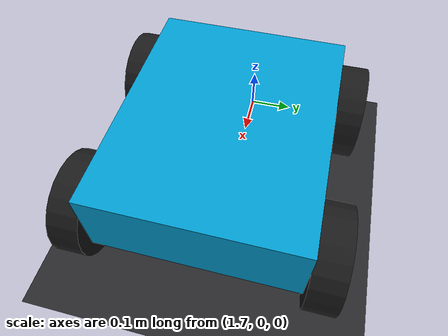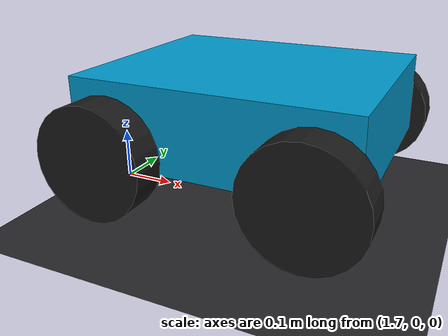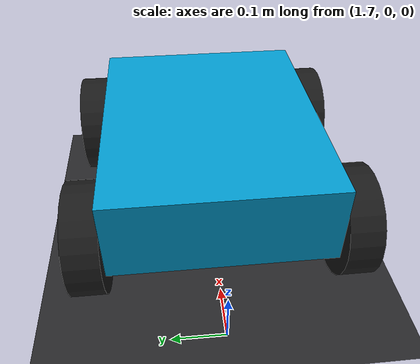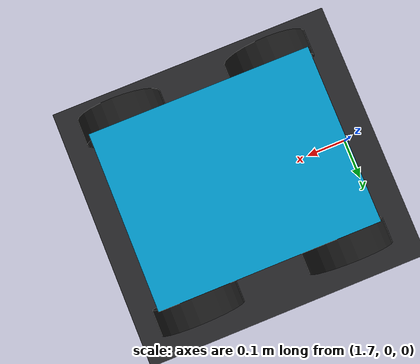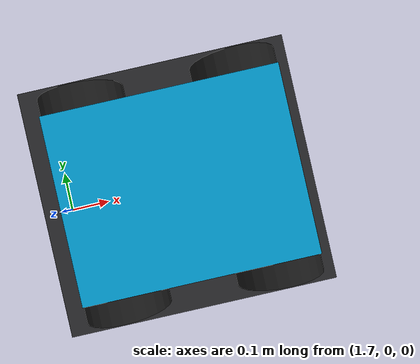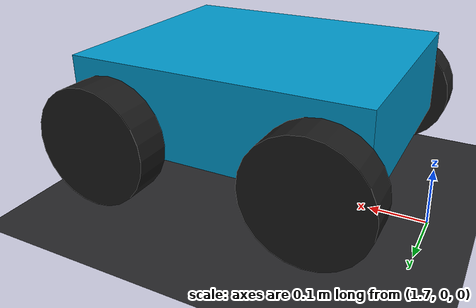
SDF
<?xml version="1.0" ?>
<sdf version="1.6">
  <world name="space_target">
    <physics name="1ms" type="ignored">
      <max_step_size>0.001</max_step_size>
      <real_time_factor>1.0</real_time_factor>
    </physics>
    <plugin filename="gz-sim-physics-system" name="gz::sim::systems::Physics"/>
    <plugin filename="gz-sim-user-commands-system" name="gz::sim::systems::UserCommands"/>
    <plugin filename="gz-sim-scene-broadcaster-system" name="gz::sim::systems::SceneBroadcaster"/>

    <!-- Light Source representing a distant star -->
    <light type="directional" name="sun">
      <cast_shadows>true</cast_shadows>
      <pose>0 0 10 0 0 0</pose>
      <diffuse>0.8 0.8 0.8 1</diffuse>
      <specular>0.2 0.2 0.2 1</specular>
    </light>

    <!-- Ground Plane tinted to look like dark cosmic soil -->
    <model name="ground_plane">
      <static>true</static>
      <link name="link">
        <collision name="collision">
          <geometry><plane><normal>0 0 1</normal><size>100 100</size></plane></geometry>
        </collision>
        <visual name="visual">
          <geometry><plane><normal>0 0 1</normal><size>100 100</size></plane></geometry>
          <material>
            <ambient>0.15 0.15 0.16 1</ambient>
            <diffuse>0.15 0.15 0.16 1</diffuse>
            <specular>0.01 0.01 0.01 1</specular>
          </material>
        </visual>
      </link>
    </model>

    <!-- ==================== WHEELED GROUND TARGET VEHICLE ==================== -->
    <model name="ground_robot">
      <pose>2.0 0.0 0.2 0 0 0</pose>
      <static>false</static>
      <link name="link">
        <inertial>
          <mass>5.0</mass>
          <inertia>
            <ixx>0.1</ixx><iyy>0.1</iyy><izz>0.1</izz>
          </inertia>
        </inertial>
        <collision name="collision">
          <geometry><box><size>0.5 0.4 0.15</size></box></geometry>
        </collision>
        <visual name="visual">
          <geometry><box><size>0.5 0.4 0.15</size></box></geometry>
          <material>
            <ambient>0.0 0.6 0.8 1.0</ambient>
            <diffuse>0.0 0.6 0.8 1.0</diffuse>
            <specular>1.0 1.0 1.0 1.0</specular>
          </material>
        </visual>

        <!-- Wheel Visual Additions -->
        <visual name="wheel_fl"><pose>0.18 0.23 -0.05 1.5708 0 0</pose><geometry><cylinder><radius>0.1</radius><length>0.06</length></cylinder></geometry><material><ambient>0.1 0.1 0.1 1</ambient><diffuse>0.1 0.1 0.1 1</diffuse></material></visual>
        <visual name="wheel_fr"><pose>0.18 -0.23 -0.05 1.5708 0 0</pose><geometry><cylinder><radius>0.1</radius><length>0.06</length></cylinder></geometry><material><ambient>0.1 0.1 0.1 1</ambient><diffuse>0.1 0.1 0.1 1</diffuse></material></visual>
        <visual name="wheel_rl"><pose>-0.18 0.23 -0.05 1.5708 0 0</pose><geometry><cylinder><radius>0.1</radius><length>0.06</length></cylinder></geometry><material><ambient>0.1 0.1 0.1 1</ambient><diffuse>0.1 0.1 0.1 1</diffuse></material></visual>
        <visual name="wheel_rr"><pose>-0.18 -0.23 -0.05 1.5708 0 0</pose><geometry><cylinder><radius>0.1</radius><length>0.06</length></cylinder></geometry><material><ambient>0.1 0.1 0.1 1</ambient><diffuse>0.1 0.1 0.1 1</diffuse></material></visual>
      </link>

      <plugin filename="gz-sim-velocity-control-system" name="gz::sim::systems::VelocityControl"><link_name>link</link_name></plugin>
      <plugin filename="gz-sim-odometry-publisher-system" name="gz::sim::systems::OdometryPublisher"><odom_frame>ground_robot/odom</odom_frame><robot_base_frame>link</robot_base_frame></plugin>
    </model>

  </world>
</sdf>
